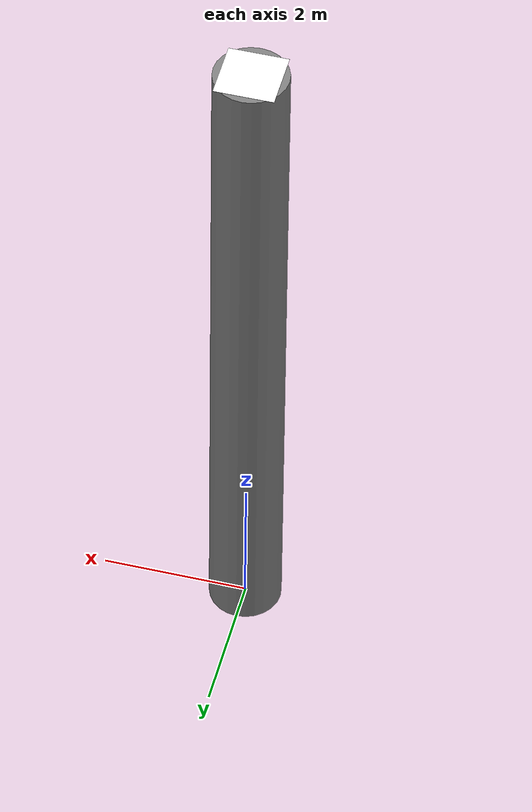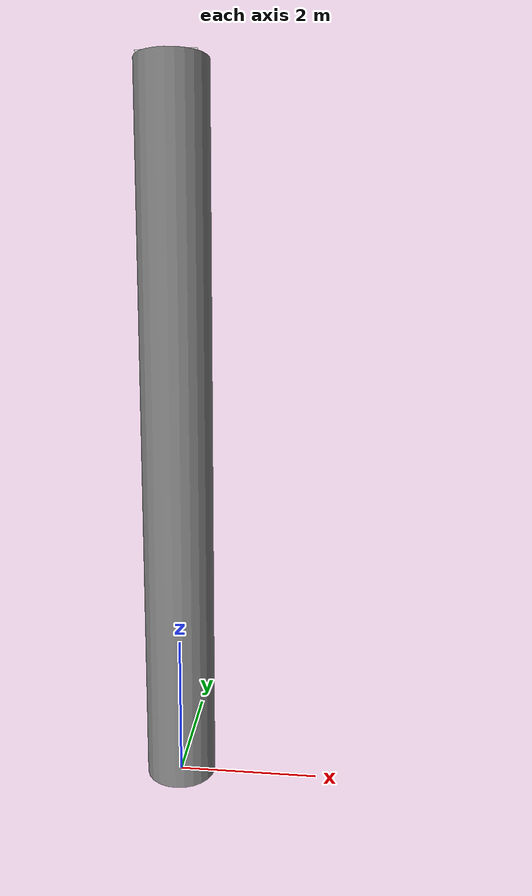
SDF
<?xml version="1.0" ?>
<sdf version="1.8">
  <model name="cylinder">
    <static>true</static>
    <link name="link">
      <collision name="collision">
        <pose>0 0 5 0 0 0</pose>
        <geometry>
          <cylinder>
            <radius>0.5</radius>
            <length>10.0</length>
          </cylinder>
        </geometry>
        <surface>
          <contact>
            <collide_bitmask>0x01</collide_bitmask>
          </contact>
          <friction>
            <ode>
              <mu>1.0</mu>
              <mu2>1.0</mu2>
              <fdir1>0 0 0</fdir1>
            </ode>
          </friction>
        </surface>
      </collision>

      <visual name="visual">
        <pose>0 0 5 0 0 0</pose>
        <geometry>
          <cylinder>
            <radius>0.5</radius>
            <length>10.0</length>
          </cylinder>
        </geometry>
        <material>
          <ambient>0.5 0.5 0.5 1.0</ambient>
          <diffuse>0.5 0.5 0.5 1.0</diffuse>
          <specular>0.1 0.1 0.1 1.0</specular>
          <pbr>
            <metal>
              <albedo_map>materials/cylinder_texture.png</albedo_map>
              <roughness>0.8</roughness>
              <metalness>0.1</metalness>
            </metal>
          </pbr>
        </material>
      </visual>

      <visual name="aruco_marker">
        <pose>0 0 10.0 0 0 0</pose>
        <cast_shadows>false</cast_shadows>
        <geometry>
          <box>
            <size>0.8 0.8 0.001</size>
          </box>
        </geometry>
        <material>
          <ambient>1.0 1.0 1.0 1.0</ambient>
          <diffuse>1.0 1.0 1.0 1.0</diffuse>
          <specular>0.0 0.0 0.0 1.0</specular>
          <pbr>
            <metal>
              <albedo_map>materials/aruco_marker_0.png</albedo_map>
              <roughness>0.0</roughness>
              <metalness>0.0</metalness>
            </metal>
          </pbr>
        </material>
      </visual>

      <sensor name="collision_sensor" type="contact">
        <contact>
          <collision>collision</collision>
        </contact>
        <always_on>true</always_on>
        <update_rate>30.0</update_rate>
      </sensor>
    </link>
  </model>
</sdf>
